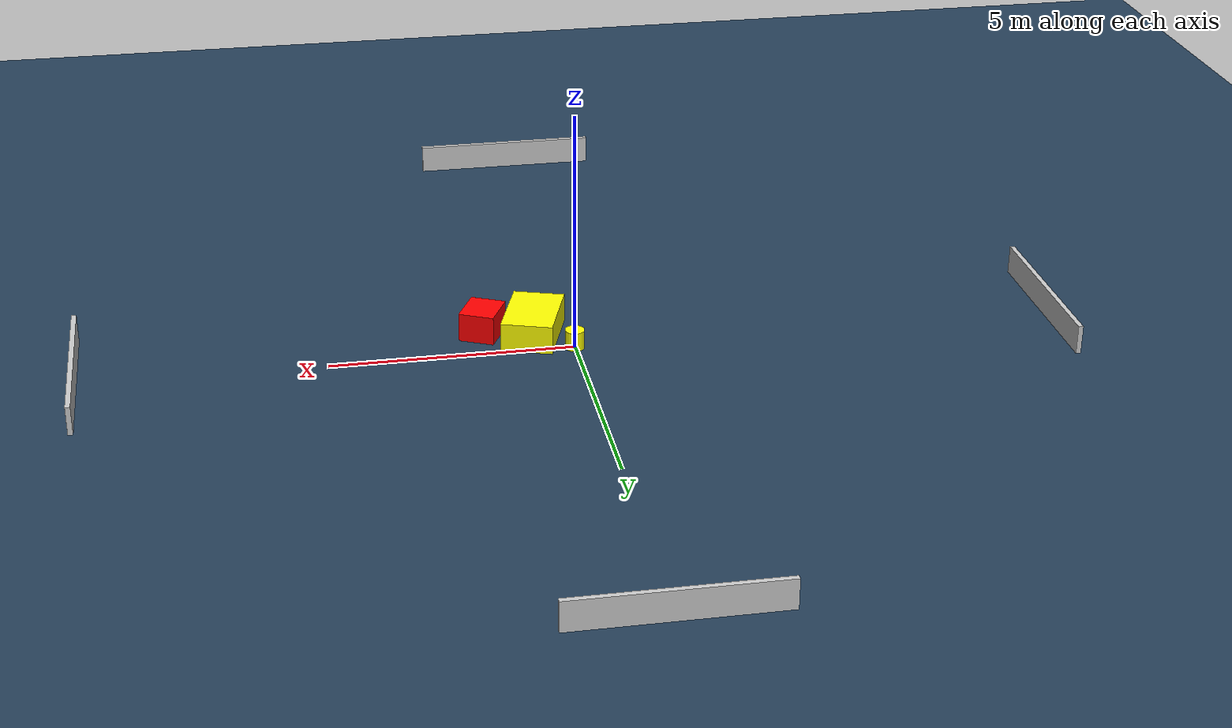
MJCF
<?xml version="1.0" ?>
<mujoco model="generated_environment">
  <option timestep="0.01" integrator="RK4" cone="elliptic"/>
  <default>
    <geom density="1"/>
  </default>
  <asset>
    <texture builtin="gradient" height="3072" name="skybox" rgb1="0.3 0.5 0.7" rgb2="0 0 0" type="skybox" width="512"/>
    <texture builtin="checker" height="300" name="groundplane" rgb1="0.2 0.3 0.4" rgb2="0.1 0.2 0.3" type="2d" width="300"/>
    <material name="groundplane" reflectance="0.2" texrepeat="5 5" texture="groundplane"/>
  </asset>
  <worldbody>
    <light dir="0 0 -1" directional="true" pos="0 0 1.5"/>
    <geom condim="3" friction="0.5 0.005 0.001" material="groundplane" name="floor" pos="0 0 0" size="0 0 0.05" type="plane"/>
    <body name="walls">
      <geom name="wall_1" condim="4" pos="-10.0 0.0 0.3" rgba="0.800000011920929 0.800000011920929 0.800000011920929 1.0" size="0.05 2.0 0.3" type="box"/>
      <geom name="wall_2" condim="4" pos="10.0 0.0 0.3" rgba="0.800000011920929 0.800000011920929 0.800000011920929 1.0" size="0.05 2.0 0.3" type="box"/>
      <geom name="wall_3" condim="4" pos="0.0 -10.0 0.3" rgba="0.800000011920929 0.800000011920929 0.800000011920929 1.0" size="2.0 0.05 0.3" type="box"/>
      <geom name="wall_4" condim="4" pos="0.0 10.0 0.3" rgba="0.800000011920929 0.800000011920929 0.800000011920929 1.0" size="2.0 0.05 0.3" type="box"/>
    </body>
    <body name="robot">
      <joint name="joint_x" type="slide" pos="0 0 0" axis="1 0 0"/>
      <joint name="joint_y" type="slide" pos="0 0 0" axis="0 1 0"/>
      <geom name="robot" type="cylinder" pos="0.0 0.0 0.2" size="0.2 0.2 0.0" mass="5.0" friction="1.0 0.005 0.0001" condim="4" rgba="1.0 1.0 0.0 1.0"/>
    </body>
    <body name="obstacle_1_movable">
      <geom name="obstacle_1_movable" condim="4" pos="0.7534722613913761 -0.6871901032113304 0.3" euler="0 0 251.7333381642585" friction="0.0 0.005 0.001" rgba="1.0 1.0 0.0 1.0" size="0.793067589117465 0.5308705259548084 0.3" type="box" mass="0.1"/>
      <joint type="free"/>
    </body>
    <body name="obstacle_2_static">
      <geom name="obstacle_2_static" condim="4" pos="1.7645308598858094 -0.9308473083301895 0.3" euler="0 0 154.41996148734893" friction="0.0 0.005 0.001" rgba="1.0 0.0 0.0 1.0" size="0.3691379734878064 0.42474512191750186 0.3" type="box"/>
    </body>
  </worldbody>
  <actuator>
    <motor name="actuator_x" joint="joint_x" gear="1" ctrlrange="-1 1"/>
    <motor name="actuator_y" joint="joint_y" gear="1" ctrlrange="-1 1"/>
  </actuator>
</mujoco>
